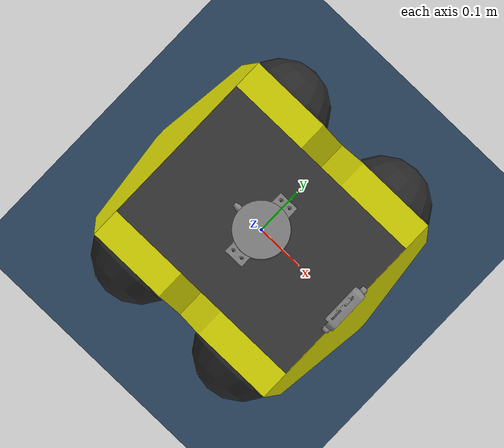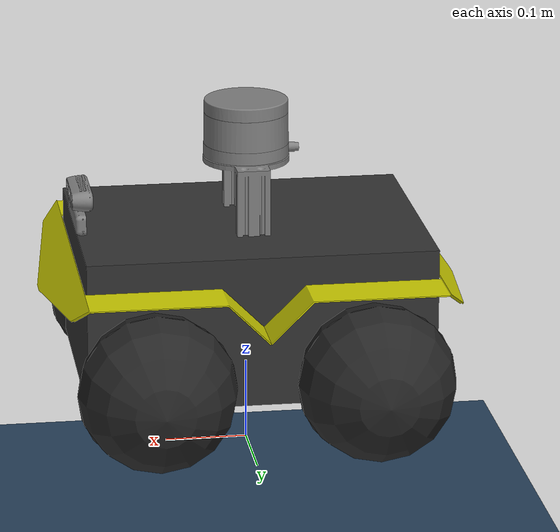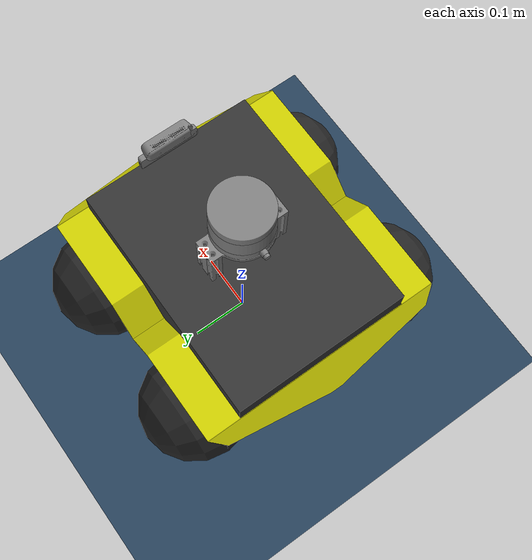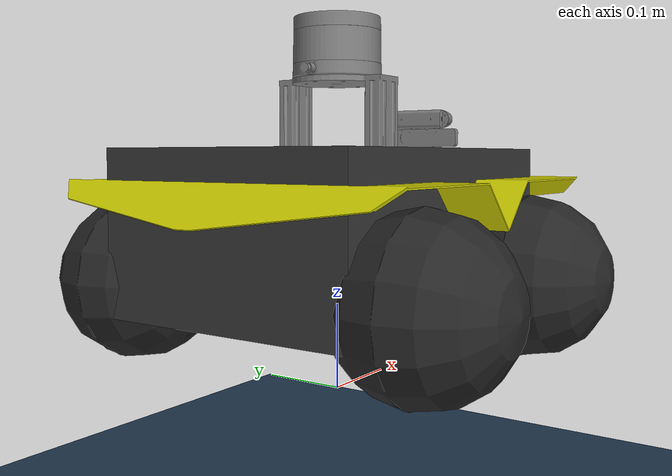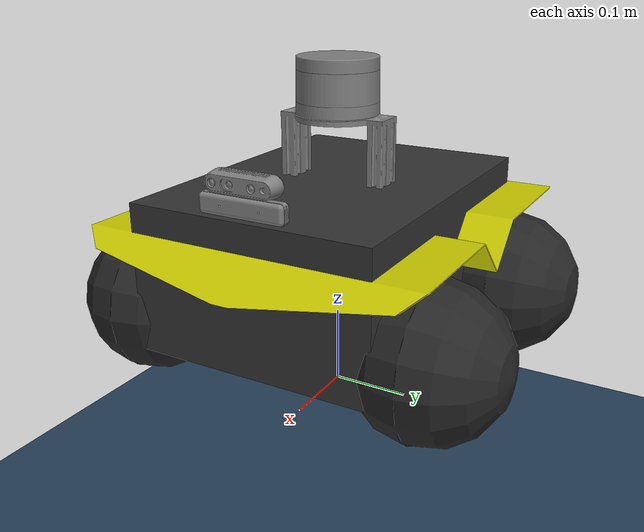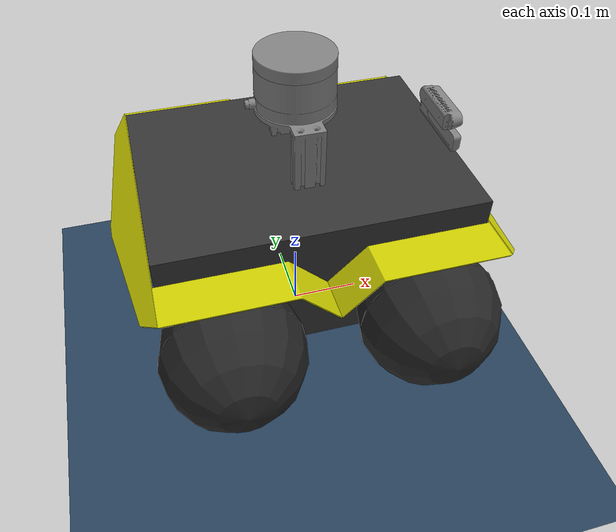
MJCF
<mujoco model="jackal scene">
  <include file="jackal.xml"/>

  <visual>
    <global offwidth="3840" offheight="2160" azimuth="140" elevation="-20"/>
    <quality shadowsize="8192" offsamples="24"/>
    <headlight ambient="0.4 0.4 0.4" diffuse="0.8 0.8 0.8" specular="0.1 0.1 0.1"/>
    <map stiffness="1e+04" stiffnessrot="5e+04" force="2e-05"/>
    <scale jointwidth="0.01" framewidth="0.01"/>
  </visual>

  <statistic meansize="0.02" extent=".3" center="0 -0.1 -0.06"/>

  <asset>
    <texture name="grid" type="2d" builtin="checker" rgb1=".1 .2 .3" rgb2=".2 .3 .4" width="300" height="300"
      mark="edge" markrgb=".2 .3 .4"/>
    <material name="grid" texture="grid" texrepeat="1 1" texuniform="true" reflectance=".2"/>
    <texture name="skybox" type="skybox" builtin="gradient" rgb1=".4 .6 .8" rgb2="0 0 0" width="100" height="100"/>
  </asset>

  <worldbody>
    <geom name="floor" type="plane" size="5 5 .1" material="grid" pos="0 0 -.132" solref="0.0002 1"/>
  </worldbody>
</mujoco>

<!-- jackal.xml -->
<mujoco model="jackal">
  <compiler angle="radian" autolimits="true"/>

  <option integrator="Euler" timestep="0.005" iterations="5" ls_iterations="5">
    <flag eulerdamp="disable"/>
  </option>

  <asset>
    <mesh name="jackal-fender" file="assets/jackal-fender.stl"/>
    <mesh name="d435" file="assets/d435.stl"/>
    <mesh name="t265" file="assets/t265.stl"/>
    <mesh name="VLP16-base-1" file="assets/VLP16_base_1.stl"/>
    <mesh name="VLP16-base-2" file="assets/VLP16_base_2.stl"/>
    <mesh name="VLP16-scan" file="assets/VLP16_scan.stl"/>
    <mesh name="VLP16-tower" file="assets/velodyne_tower.stl"/>
  </asset>

  <default>
    <mesh maxhullvert="16"/>
    <default class="throttle">
      <joint type="hinge" axis="0 1 0" frictionloss="0.001" damping="0.01" armature="0.01" limited="false"/>
    </default>
    <default class="jackal_wheel">
      <geom fitscale="1" type="mesh" friction="2 0.005 0.0001" condim="1" contype="0" conaffinity="1" mesh="jackal-wheel" mass="0.477"/>
    </default>
  </default>

  <worldbody>
    <light name="spotlight" mode="targetbodycom" target="base_link" pos="3 0 4"/>
    <body name="base_link" pos="0.0 0.0 0.1" euler="0 0 0">
      <joint type="free"/>
      <body name="base_footprint" pos="0 0 0.092">
        <inertial pos="0.0  0.0 0.0" mass="16.523" diaginertia="0.3136 0.3922 0.4485"/>
        <geom size="0.21 0.155 0.092" mass="16.523" condim="1" contype="0" conaffinity="1" type="box" rgba="0.2 0.2 0.2 1"/>
      </body>
      <geom type="mesh" rgba="0.8 0.8 0 1" condim="1" contype="0" conaffinity="1" mesh="jackal-fender"/>
      <geom pos="0 0 0" quat="0 0 0 1" type="mesh" rgba="0.8 0.8 0 1" contype="0" conaffinity="1" mesh="jackal-fender"/>
      <site name="imu" pos="0 0 0.2" group="5"/>
      <body name="front_left_wheel_link" pos="0.131 0.187795 0.0345">
        <inertial pos="0 0 0" quat="0.707107 0 0 0.707107" mass="0.477" diaginertia="0.0024 0.0013 0.0013"/>
        <joint class="throttle" name="front_left_wheel" pos="0 0 0" axis="0 1 0"/>
        <geom name="front_left_wheel" size="0.095 0.00001" quat="0.707107 0.707107 0 0" type="capsule" contype="0" conaffinity="1" friction="1 0.005 0.0001" rgba="0.15 0.15 0.15 1"/>
      </body>
      <body name="front_right_wheel_link" pos="0.131 -0.187795 0.0345">
        <inertial pos="0 0 0" quat="0.707107 0 0 0.707107" mass="0.477" diaginertia="0.0024 0.0013 0.0013"/>
        <joint class="throttle" name="front_right_wheel" pos="0 0 0" axis="0 1 0"/>
        <geom name="front_right_wheel" size="0.095 0.00001" quat="0.707107 0.707107 0 0" type="capsule" contype="0" conaffinity="1" friction="1 0.005 0.0001" rgba="0.15 0.15 0.15 1"/>
      </body>
      <body name="rear_left_wheel_link" pos="-0.131 0.187795 0.0345">
        <inertial pos="0 0 0" quat="0.707107 0 0 0.707107" mass="0.477" diaginertia="0.0024 0.0013 0.0013"/>
        <joint class="throttle" name="rear_left_wheel" pos="0 0 0" axis="0 1 0"/>
        <geom name="rear_left_wheel" size="0.095 0.00001" quat="0.707107 0.707107 0 0" type="capsule" contype="0" conaffinity="1" friction="1 0.005 0.0001" rgba="0.15 0.15 0.15 1"/>
      </body>
      <body name="rear_right_wheel_link" pos="-0.131 -0.187795 0.0345">
        <inertial pos="0 0 0" quat="0.707107 0 0 0.707107" mass="0.477" diaginertia="0.0024 0.0013 0.0013"/>
        <joint class="throttle" name="rear_right_wheel" pos="0 0 0" axis="0 1 0"/>
        <geom name="rear_right_wheel" size="0.095 0.00001" quat="0.707107 0.707107 0 0" type="capsule" contype="0" conaffinity="1" friction="1 0.005 0.0001" rgba="0.15 0.15 0.15 1"/>
      </body>
      <geom pos="0 0 0.266" type="mesh" mass="0.1" condim="1" contype="0" conaffinity="1" mesh="VLP16-base-1"/>
      <geom pos="0 0 0.266" type="mesh" mass="0.1" condim="1" contype="0" conaffinity="1" mesh="VLP16-base-2"/>
      <geom pos="0 0 0.266" type="mesh" mass="0.63" condim="1" contype="0" conaffinity="1" mesh="VLP16-scan"/>
      <geom pos="0 0 0.184" type="mesh" mass="0.63" condim="1" contype="0" conaffinity="1" mesh="VLP16-tower"/>
      <geom pos="0.215 0 0.225" quat="0.5 0.5 0.5 0.5" type="mesh" contype="0" conaffinity="1" mass="0.072" mesh="d435"/>
      <geom pos="0.2 0 0.2" quat="0.5 0.5 0.5 0.5" type="mesh" contype="0" conaffinity="1" mass="0.055" mesh="t265"/>
    </body>
  </worldbody>

  <actuator>
    <velocity ctrllimited="true" ctrlrange="-26 26" name="front_left_wheel_velocity" joint="front_left_wheel"/>
    <velocity ctrllimited="true" ctrlrange="-26 26" name="front_right_wheel_velocity" joint="front_right_wheel"/>
    <velocity ctrllimited="true" ctrlrange="-26 26" name="rear_left_wheel_velocity" joint="rear_left_wheel"/>
    <velocity ctrllimited="true" ctrlrange="-26 26" name="rear_right_wheel_velocity" joint="rear_right_wheel"/>
  </actuator>

  <sensor>
    <gyro site="imu" name="local_angvel"/>
    <velocimeter site="imu" name="local_linvel"/>
    <accelerometer site="imu" name="local_linaccel"/>
    <framepos objtype="site" objname="imu" name="base_link"/>
    <framezaxis objtype="site" objname="imu" name="upvector"/>
    <framexaxis objtype="site" objname="imu" name="forwardvector"/>
    <framelinvel objtype="site" objname="imu" name="global_linvel"/>
    <frameangvel objtype="site" objname="imu" name="global_angvel"/>
    <framequat objtype="site" objname="imu" name="orientation"/>
  </sensor>
</mujoco>
